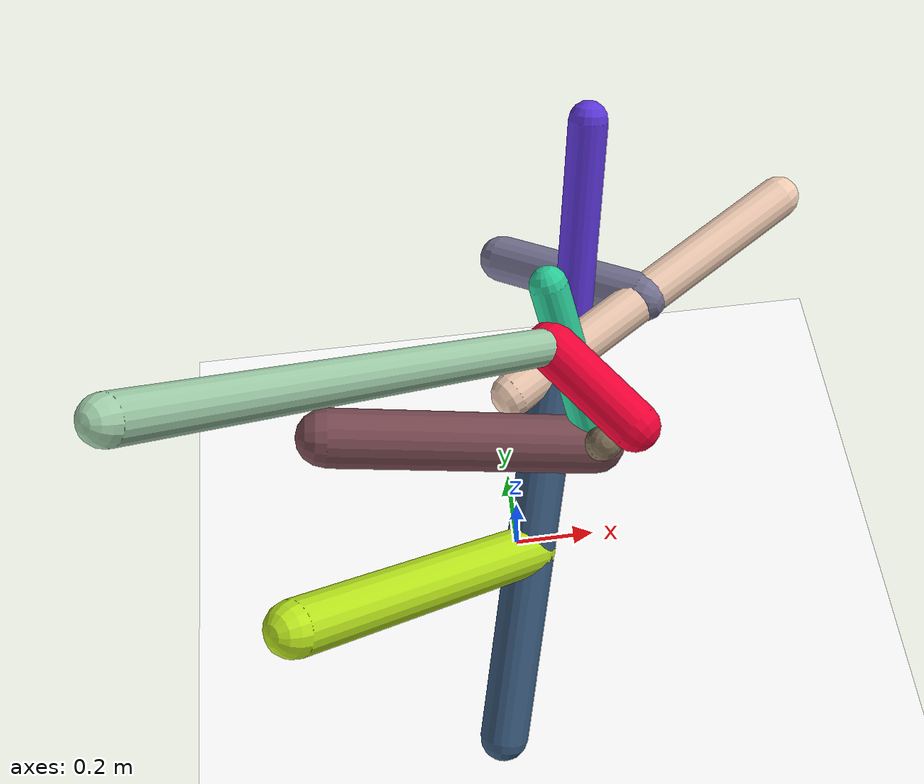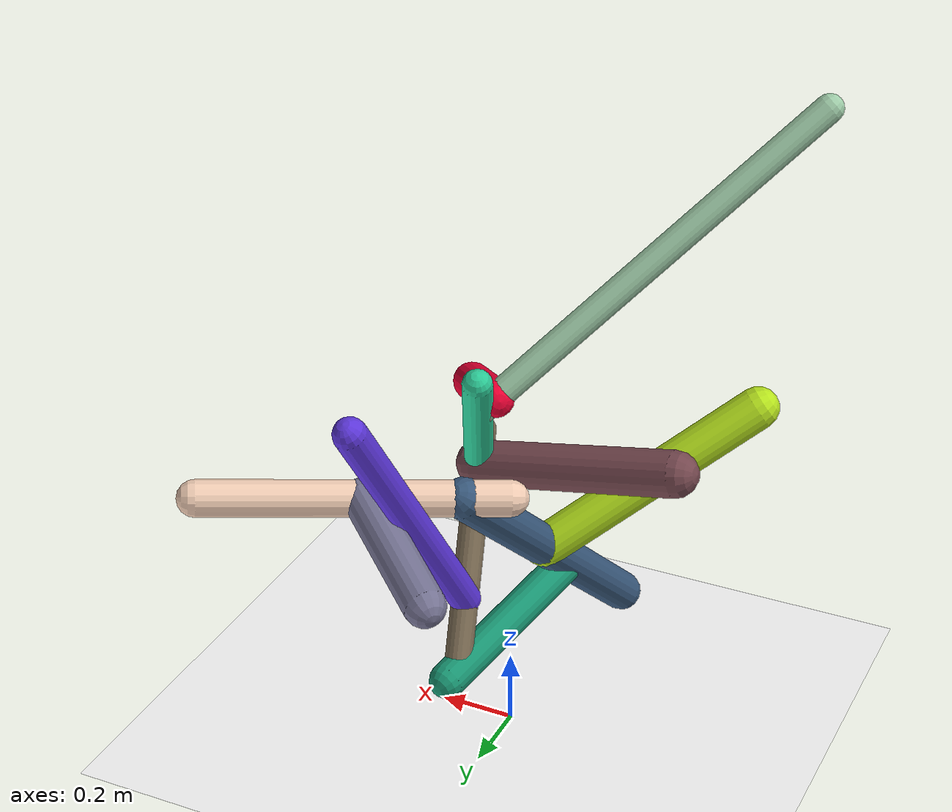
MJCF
<mujoco model="morphology">
  <option timestep="0.01"/>
  <default>
    <default class="/"/>
    <default class="0/"/>
    <default class="0/1/"/>
    <default class="0/2/"/>
    <default class="0/2/3/"/>
    <default class="0/2/4/"/>
    <default class="0/2/4/5/"/>
    <default class="0/2/4/5/6/"/>
    <default class="0/2/4/5/7/"/>
    <default class="0/2/4/5/7/8/"/>
    <default class="0/2/4/5/7/8/9/"/>
    <default class="0/2/4/5/10/"/>
  </default>
  <asset>
    <texture name="texplane" type="2d" builtin="checker" rgb1="0.10000000000000001 0.20000000000000001 0.29999999999999999" rgb2="0.20000000000000001 0.29999999999999999 0.40000000000000002" width="300" height="300"/>
    <material name="MatPlane" class="/" texture="texplane" texrepeat="20 20" specular="1" shininess="1" reflectance="0.5"/>
  </asset>
  <worldbody>
    <light name="//unnamed_light_0" class="/" directional="true" pos="0 0 1.5" dir="0 0 -1.3" cutoff="100" exponent="1" diffuse="1 1 1" specular="0.10000000000000001 0.10000000000000001 0.10000000000000001"/>
    <geom name="ground" class="/" type="plane" size="15 15 0.5" material="MatPlane" rgba="1 1 1 1"/>
    <site name="body" class="/" size="9.9999999999999995e-07 9.9999999999999995e-07 9.9999999999999995e-07" pos="0 0 0.6961719751358032"/>
    <body pos="0 0 0.6961719751358032" name="0/">
      <freejoint name="0/"/>
      <geom name="0/geom" class="0/" type="capsule" contype="1" conaffinity="1" condim="3" size="0.048857052148197938" rgba="0.9618317133240899 0.81892812589255692 0.72129271544387541 1" friction="0.59999999999999998 0.10000000000000001 0.10000000000000001" fromto="0 0 0 0.67284536600114464 0.42271162398721263 0.062352943782136849"/>
      <site name="0/end0" class="0/" size="0.0050000000000000001" pos="0.67284536600114464 0.42271162398721263 0.062352943782136849"/>
      <site name="0/attach1" class="0/" size="9.9999999999999995e-07 9.9999999999999995e-07 9.9999999999999995e-07" pos="0.31780267624871172 0.19965788897823333 0.0294509458001006"/>
      <body pos="0.31780267624871172 0.19965788897823333 0.0294509458001006" name="0/1/">
        <joint name="0/1/joint/" class="0/" type="hinge" axis="0 1 0" limited="true" range="-66.466239288325255 66.466239288325255"/>
        <geom name="0/1/geom" class="0/1/" type="capsule" contype="1" conaffinity="1" condim="3" size="0.054226844827487422" rgba="0.46909320356067397 0.46118787362831914 0.58697961247857933 1" friction="0.59999999999999998 0.10000000000000001 0.10000000000000001" fromto="0 0 0 -0.29058824132211791 0.23532820336609028 -0.10014757797941365"/>
        <site name="0/1/end1" class="0/1/" size="0.0050000000000000001" pos="-0.29058824132211791 0.23532820336609028 -0.10014757797941365"/>
      </body>
      <site name="0/attach2" class="0/" size="9.9999999999999995e-07 9.9999999999999995e-07 9.9999999999999995e-07" pos="0.10297737518708815 0.064695003783678387 0.0095429690242699802"/>
      <body pos="0.10297737518708815 0.064695003783678387 0.0095429690242699802" name="0/2/">
        <joint name="0/2/joint/" class="0/" type="hinge" axis="0 0 1" limited="true" range="-46.519325039773946 46.519325039773946"/>
        <geom name="0/2/geom" class="0/2/" type="capsule" contype="1" conaffinity="1" condim="3" size="0.055731465357126211" rgba="0.22429519507344164 0.35275298503946106 0.4931863506399683 1" friction="0.59999999999999998 0.10000000000000001 0.10000000000000001" fromto="0 0 0 -0.20102362555968756 -0.61856289986157809 -0.60571494893456523"/>
        <site name="0/2/end2" class="0/2/" size="0.0050000000000000001" pos="-0.20102362555968756 -0.61856289986157809 -0.60571494893456523"/>
        <site name="0/2/attach3" class="0/2/" size="9.9999999999999995e-07 9.9999999999999995e-07 9.9999999999999995e-07" pos="-0.097535875844202924 -0.30012429650869726 -0.2938905210358862"/>
        <body pos="-0.097535875844202924 -0.30012429650869726 -0.2938905210358862" name="0/2/3/">
          <geom name="0/2/3/geom" class="0/2/3/" type="capsule" contype="1" conaffinity="1" condim="3" size="0.057660962476637108" rgba="0.73261728033192997 0.91009169245593757 0.11640429015807763 1" friction="0.59999999999999998 0.10000000000000001 0.10000000000000001" fromto="0 0 0 -0.48154633396616425 -0.30269241217971488 0.38884653952672532"/>
          <site name="0/2/3/end3" class="0/2/3/" size="0.0050000000000000001" pos="-0.48154633396616425 -0.30269241217971488 0.38884653952672532"/>
        </body>
        <site name="0/2/attach4" class="0/2/" size="9.9999999999999995e-07 9.9999999999999995e-07 9.9999999999999995e-07" pos="-0.12904635719154348 -0.3970841173455662 -0.38883642377278049"/>
        <body pos="-0.12904635719154348 -0.3970841173455662 -0.38883642377278049" name="0/2/4/">
          <joint name="0/2/4/joint/" class="0/2/" type="hinge" axis="-5.5511151231257827e-17 -0.6996476583952731 0.71448803636031" limited="true" range="-52.811925114687639 52.811925114687639"/>
          <geom name="0/2/4/geom" class="0/2/4/" type="capsule" contype="1" conaffinity="1" condim="3" size="0.049433403905372514" rgba="0.096233549084462688 0.59658109402084181 0.45565189382430049 1" friction="0.59999999999999998 0.10000000000000001 0.10000000000000001" fromto="0 0 0 0.13134562815839479 0.49923083564549753 -0.11612846036493463"/>
          <site name="0/2/4/end4" class="0/2/4/" size="0.0050000000000000001" pos="0.13134562815839479 0.49923083564549753 -0.11612846036493463"/>
          <site name="0/2/4/attach5" class="0/2/4/" size="9.9999999999999995e-07 9.9999999999999995e-07 9.9999999999999995e-07" pos="0.12121168710834228 0.46071279793282338 -0.10716859631713845"/>
          <body pos="0.12121168710834228 0.46071279793282338 -0.10716859631713845" name="0/2/4/5/">
            <joint name="0/2/4/5/joint/" class="0/2/4/" type="hinge" axis="-0.9687001800136954 0.24177857899641514 -0.056241265809977084" limited="true" range="-52.493996874012929 52.493996874012929"/>
            <geom name="0/2/4/5/geom" class="0/2/4/5/" type="capsule" contype="1" conaffinity="1" condim="3" size="0.036665203848757585" rgba="0.4938723675581147 0.42934919802029436 0.33339087420952029 1" friction="0.59999999999999998 0.10000000000000001 0.10000000000000001" fromto="0 0 0 0.072888181939229635 -0.3169252976926531 0.55233022872660209"/>
            <site name="0/2/4/5/end5" class="0/2/4/5/" size="0.0050000000000000001" pos="0.072888181939229635 -0.3169252976926531 0.55233022872660209"/>
            <site name="0/2/4/5/attach6" class="0/2/4/5/" size="9.9999999999999995e-07 9.9999999999999995e-07 9.9999999999999995e-07" pos="0.062731686639579259 -0.27276381347509587 0.47536659453150504"/>
            <body pos="0.062731686639579259 -0.27276381347509587 0.47536659453150504" name="0/2/4/5/6/">
              <joint name="0/2/4/5/6/joint/" class="0/2/4/5/" type="hinge" axis="0.99351305241959931 0.056595992999148692 -0.09863421438999137" limited="true" range="-35.954110242659084 35.954110242659084"/>
              <geom name="0/2/4/5/6/geom" class="0/2/4/5/6/" type="capsule" contype="1" conaffinity="1" condim="3" size="0.061960522549058331" rgba="0.46784114110150599 0.28731359743515972 0.31639723658637564 1" friction="0.59999999999999998 0.10000000000000001 0.10000000000000001" fromto="0 0 0 -0.55526834638374434 0.018656838880118265 0.11421091963564423"/>
              <site name="0/2/4/5/6/end6" class="0/2/4/5/6/" size="0.0050000000000000001" pos="-0.55526834638374434 0.018656838880118265 0.11421091963564423"/>
            </body>
            <site name="0/2/4/5/attach7" class="0/2/4/5/" size="9.9999999999999995e-07 9.9999999999999995e-07 9.9999999999999995e-07" pos="0.062408107935643074 -0.27135686005214621 0.47291458798118197"/>
            <body pos="0.062408107935643074 -0.27135686005214621 0.47291458798118197" name="0/2/4/5/7/">
              <joint name="0/2/4/5/7/joint/" class="0/2/4/5/" type="hinge" axis="0.99351305241959931 0.056595992999148692 -0.09863421438999137" limited="true" range="-54.567498587372668 54.567498587372668"/>
              <geom name="0/2/4/5/7/geom" class="0/2/4/5/7/" type="capsule" contype="1" conaffinity="1" condim="3" size="0.039601768557988706" rgba="0.17180162601782267 0.80887490164542719 0.60137135998745817 1" friction="0.59999999999999998 0.10000000000000001 0.10000000000000001" fromto="0 0 0 -0.079070702751440125 0.170654327455809 0.34050914210196126"/>
              <site name="0/2/4/5/7/end7" class="0/2/4/5/7/" size="0.0050000000000000001" pos="-0.079070702751440125 0.170654327455809 0.34050914210196126"/>
              <site name="0/2/4/5/7/attach8" class="0/2/4/5/7/" size="9.9999999999999995e-07 9.9999999999999995e-07 9.9999999999999995e-07" pos="-0.051518253356307546 0.11118925938796607 0.22185759886430587"/>
              <body pos="-0.051518253356307546 0.11118925938796607 0.22185759886430587" name="0/2/4/5/7/8/">
                <joint name="0/2/4/5/7/8/joint/" class="0/2/4/5/7/" type="hinge" axis="-0.97912350841441598 -0.091074048206696678 -0.18172141594619312" limited="true" range="-49.913468007871522 49.913468007871522"/>
                <geom name="0/2/4/5/7/8/geom" class="0/2/4/5/7/8/" type="capsule" contype="1" conaffinity="1" condim="3" size="0.037849288527044452" rgba="0.6352522628316204 0.81707638817079675 0.67315338279314119 1" friction="0.59999999999999998 0.10000000000000001 0.10000000000000001" fromto="0 0 0 -0.69328401532997197 -0.56767933370009604 0.73413267575560148"/>
                <site name="0/2/4/5/7/8/end8" class="0/2/4/5/7/8/" size="0.0050000000000000001" pos="-0.69328401532997197 -0.56767933370009604 0.73413267575560148"/>
                <site name="0/2/4/5/7/8/attach9" class="0/2/4/5/7/8/" size="9.9999999999999995e-07 9.9999999999999995e-07 9.9999999999999995e-07" pos="-0.034769657502147673 -0.028470317456266939 0.036818304090003411"/>
                <body pos="-0.034769657502147673 -0.028470317456266939 0.036818304090003411" name="0/2/4/5/7/8/9/">
                  <geom name="0/2/4/5/7/8/9/geom" class="0/2/4/5/7/8/9/" type="capsule" contype="1" conaffinity="1" condim="3" size="0.051055032533905101" rgba="0.9432928497301637 0.00026714756080981061 0.20635662322670856 1" friction="0.59999999999999998 0.10000000000000001 0.10000000000000001" fromto="0 0 0 0.1456874269709264 -0.16873220136163503 -0.064967484057543934"/>
                  <site name="0/2/4/5/7/8/9/end9" class="0/2/4/5/7/8/9/" size="0.0050000000000000001" pos="0.1456874269709264 -0.16873220136163503 -0.064967484057543934"/>
                </body>
              </body>
            </body>
            <site name="0/2/4/5/attach10" class="0/2/4/5/" size="9.9999999999999995e-07 9.9999999999999995e-07 9.9999999999999995e-07" pos="0.021859219165481794 -0.095046128974999727 0.16564424026273211"/>
            <body pos="0.021859219165481794 -0.095046128974999727 0.16564424026273211" name="0/2/4/5/10/">
              <joint name="0/2/4/5/10/joint/" class="0/2/4/5/" type="hinge" axis="0 0.86735693209086318 0.49768660053684949" limited="true" range="-34.160459891011485 34.160459891011485"/>
              <geom name="0/2/4/5/10/geom" class="0/2/4/5/10/" type="capsule" contype="1" conaffinity="1" condim="3" size="0.043248081978837047" rgba="0.37220999842121361 0.2188066065469928 0.87598833433057477 1" friction="0.59999999999999998 0.10000000000000001 0.10000000000000001" fromto="0 0 0 0.10124618760211912 0.39516110003640881 0.67922872539778489"/>
              <site name="0/2/4/5/10/end10" class="0/2/4/5/10/" size="0.0050000000000000001" pos="0.10124618760211912 0.39516110003640881 0.67922872539778489"/>
            </body>
          </body>
        </body>
      </body>
      <camera name="0/iso" class="0/" mode="trackcom" pos="-2.2999999999999998 -2.2999999999999998 1" xyaxes="0.45000000000000001 -0.45000000000000001 0 0.29999999999999999 0.14999999999999999 0.93999999999999995"/>
    </body>
  </worldbody>
  <actuator>
    <motor name="0/1/motor" class="0/1/" ctrllimited="true" ctrlrange="-1 1" gear="52" joint="0/1/joint/"/>
    <motor name="0/2/motor" class="0/2/" ctrllimited="true" ctrlrange="-1 1" gear="60" joint="0/2/joint/"/>
    <motor name="0/2/4/motor" class="0/2/4/" ctrllimited="true" ctrlrange="-1 1" gear="52" joint="0/2/4/joint/"/>
    <motor name="0/2/4/5/motor" class="0/2/4/5/" ctrllimited="true" ctrlrange="-1 1" gear="53" joint="0/2/4/5/joint/"/>
    <motor name="0/2/4/5/6/motor" class="0/2/4/5/6/" ctrllimited="true" ctrlrange="-1 1" gear="83" joint="0/2/4/5/6/joint/"/>
    <motor name="0/2/4/5/7/motor" class="0/2/4/5/7/" ctrllimited="true" ctrlrange="-1 1" gear="90" joint="0/2/4/5/7/joint/"/>
    <motor name="0/2/4/5/7/8/motor" class="0/2/4/5/7/8/" ctrllimited="true" ctrlrange="-1 1" gear="89" joint="0/2/4/5/7/8/joint/"/>
    <motor name="0/2/4/5/10/motor" class="0/2/4/5/10/" ctrllimited="true" ctrlrange="-1 1" gear="80" joint="0/2/4/5/10/joint/"/>
  </actuator>
  <sensor>
    <subtreelinvel name="velocity" body="0/"/>
  </sensor>
</mujoco>
